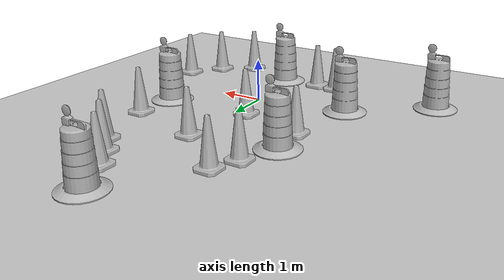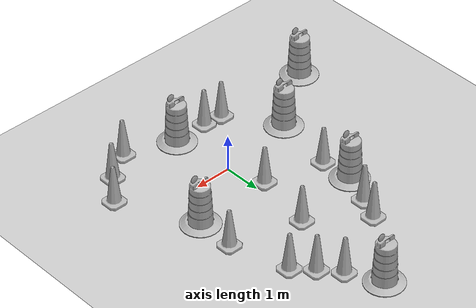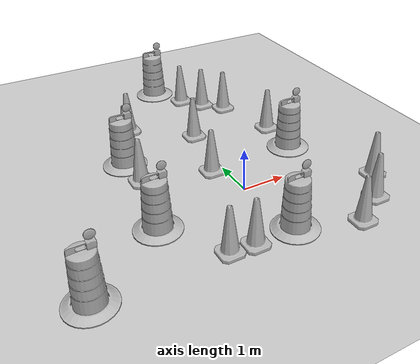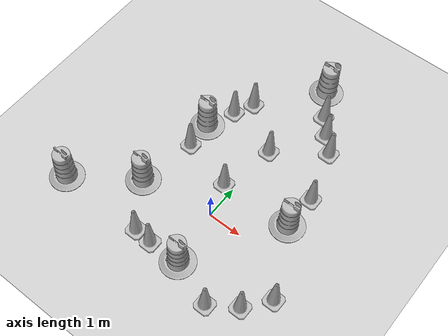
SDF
<sdf version="1.7">
 <world name="default">
  <light name="sun" type="directional">
   <pose>0 0 10 0 -0 0</pose>
   <diffuse>0.8 0.8 0.8 1</diffuse>
   <specular>0.2 0.2 0.2 1</specular>
   <attenuation>
    <range>1000</range>
    <constant>0.9</constant>
    <linear>0.01</linear>
    <quadratic>0.001</quadratic>
   </attenuation>
   <direction>-0.5 0.1 -0.9</direction>
   <spot><inner_angle>0</inner_angle><outer_angle>0</outer_angle><falloff>0</falloff></spot>
  </light>
  <model name="ground_plane">
   <static>1</static>
   <link name="link">
    <collision name="collision">
     <geometry><plane><normal>0 0 1</normal><size>100 100</size></plane></geometry>
     <surface><friction><ode><mu>100</mu><mu2>50</mu2></ode></friction></surface>
    </collision>
    <visual name="visual">
     <cast_shadows>0</cast_shadows>
     <geometry><plane><normal>0 0 1</normal><size>100 100</size></plane></geometry>
     <material>
      <script><uri>file://media/materials/scripts/gazebo.material</uri><name>Gazebo/Grey</name></script>
     </material>
    </visual>
   </link>
  </model>
  <gravity>0 0 -9.8</gravity>
  <magnetic_field>6e-06 2.3e-05 -4.2e-05</magnetic_field>
  <atmosphere type="adiabatic"/>
  <physics type="ode">
   <max_step_size>0.001</max_step_size>
   <real_time_factor>1</real_time_factor>
   <real_time_update_rate>1000</real_time_update_rate>
  </physics>
  <scene><ambient>0.4 0.4 0.4 1</ambient><background>0.7 0.7 0.7 1</background><shadows>1</shadows></scene>
  <audio><device>default</device></audio>
  <spherical_coordinates>
   <surface_model>EARTH_WGS84</surface_model>
   <latitude_deg>0</latitude_deg>
   <longitude_deg>0</longitude_deg>
   <elevation>0</elevation>
   <heading_deg>0</heading_deg>
  </spherical_coordinates>
  <model name="Construction Cone">
   <link name="link">
    <collision name="collision">
     <geometry>
      <mesh><scale>10 10 10</scale><uri>model://construction_cone/meshes/construction_cone.dae</uri></mesh>
     </geometry>
    </collision>
    <visual name="visual">
     <geometry>
      <mesh><scale>10 10 10</scale><uri>model://construction_cone/meshes/construction_cone.dae</uri></mesh>
     </geometry>
    </visual>
    <inertial>
     <inertia><ixx>1</ixx><ixy>0</ixy><ixz>0</ixz><iyy>1</iyy><iyz>0</iyz><izz>1</izz></inertia>
     <mass>1</mass>
    </inertial>
   </link>
   <pose>1.51242 -2.12778 -1e-05 0 -0 0</pose>
  </model>
  <model name="Construction Barrel">
   <link name="link">
    <inertial>
     <pose>0 0 0.4 0 -0 0</pose>
     <mass>500</mass>
     <inertia><ixx>51.2096</ixx><iyy>51.2096</iyy><izz>25</izz><ixy>0</ixy><ixz>0</ixz><iyz>0</iyz></inertia>
    </inertial>
    <collision name="collision">
     <geometry><mesh><uri>model://construction_barrel/meshes/construction_barrel.dae</uri></mesh></geometry>
    </collision>
    <visual name="visual">
     <geometry><mesh><uri>model://construction_barrel/meshes/construction_barrel.dae</uri></mesh></geometry>
    </visual>
   </link>
   <pose>0.205308 -1.63476 -1e-06 0 5e-06 -3.3e-05</pose>
  </model>
  <model name="Construction Cone_0">
   <link name="link">
    <collision name="collision">
     <geometry>
      <mesh><scale>10 10 10</scale><uri>model://construction_cone/meshes/construction_cone.dae</uri></mesh>
     </geometry>
    </collision>
    <visual name="visual">
     <geometry>
      <mesh><scale>10 10 10</scale><uri>model://construction_cone/meshes/construction_cone.dae</uri></mesh>
     </geometry>
    </visual>
    <inertial>
     <inertia><ixx>1</ixx><ixy>0</ixy><ixz>0</ixz><iyy>1</iyy><iyz>0</iyz><izz>1</izz></inertia>
     <mass>1</mass>
    </inertial>
   </link>
   <pose>2.27293 -1.62934 -0 1e-06 -0 0</pose>
  </model>
  <model name="Construction Cone_1">
   <link name="link">
    <collision name="collision">
     <geometry>
      <mesh><scale>10 10 10</scale><uri>model://construction_cone/meshes/construction_cone.dae</uri></mesh>
     </geometry>
    </collision>
    <visual name="visual">
     <geometry>
      <mesh><scale>10 10 10</scale><uri>model://construction_cone/meshes/construction_cone.dae</uri></mesh>
     </geometry>
    </visual>
    <inertial>
     <inertia><ixx>1</ixx><ixy>0</ixy><ixz>0</ixz><iyy>1</iyy><iyz>0</iyz><izz>1</izz></inertia>
     <mass>1</mass>
    </inertial>
   </link>
   <pose>2.81806 -0.928471 -0 0 -1e-06 0</pose>
  </model>
  <model name="Construction Barrel_0">
   <link name="link">
    <inertial>
     <pose>0 0 0.4 0 -0 0</pose>
     <mass>500</mass>
     <inertia><ixx>51.2096</ixx><iyy>51.2096</iyy><izz>25</izz><ixy>0</ixy><ixz>0</ixz><iyz>0</iyz></inertia>
    </inertial>
    <collision name="collision">
     <geometry><mesh><uri>model://construction_barrel/meshes/construction_barrel.dae</uri></mesh></geometry>
    </collision>
    <visual name="visual">
     <geometry><mesh><uri>model://construction_barrel/meshes/construction_barrel.dae</uri></mesh></geometry>
    </visual>
   </link>
   <pose>1.83898 1.04061 -1e-06 0 5e-06 -2.6e-05</pose>
  </model>
  <model name="Construction Barrel_1">
   <link name="link">
    <inertial>
     <pose>0 0 0.4 0 -0 0</pose>
     <mass>500</mass>
     <inertia><ixx>51.2096</ixx><iyy>51.2096</iyy><izz>25</izz><ixy>0</ixy><ixz>0</ixz><iyz>0</iyz></inertia>
    </inertial>
    <collision name="collision">
     <geometry><mesh><uri>model://construction_barrel/meshes/construction_barrel.dae</uri></mesh></geometry>
    </collision>
    <visual name="visual">
     <geometry><mesh><uri>model://construction_barrel/meshes/construction_barrel.dae</uri></mesh></geometry>
    </visual>
   </link>
   <pose>-1.89899 2.24211 -1e-06 0 5e-06 -2.5e-05</pose>
  </model>
  <model name="Construction Barrel_2">
   <link name="link">
    <inertial>
     <pose>0 0 0.4 0 -0 0</pose>
     <mass>500</mass>
     <inertia><ixx>51.2096</ixx><iyy>51.2096</iyy><izz>25</izz><ixy>0</ixy><ixz>0</ixz><iyz>0</iyz></inertia>
    </inertial>
    <collision name="collision">
     <geometry><mesh><uri>model://construction_barrel/meshes/construction_barrel.dae</uri></mesh></geometry>
    </collision>
    <visual name="visual">
     <geometry><mesh><uri>model://construction_barrel/meshes/construction_barrel.dae</uri></mesh></geometry>
    </visual>
   </link>
   <pose>-3.90149 -1.57375 -1e-06 0 5e-06 -2.4e-05</pose>
  </model>
  <model name="Construction Barrel_3">
   <link name="link">
    <inertial>
     <pose>0 0 0.4 0 -0 0</pose>
     <mass>500</mass>
     <inertia><ixx>51.2096</ixx><iyy>51.2096</iyy><izz>25</izz><ixy>0</ixy><ixz>0</ixz><iyz>0</iyz></inertia>
    </inertial>
    <collision name="collision">
     <geometry><mesh><uri>model://construction_barrel/meshes/construction_barrel.dae</uri></mesh></geometry>
    </collision>
    <visual name="visual">
     <geometry><mesh><uri>model://construction_barrel/meshes/construction_barrel.dae</uri></mesh></geometry>
    </visual>
   </link>
   <pose>0.148005 5.40159 -1e-06 -0 5e-06 -2.2e-05</pose>
  </model>
  <model name="Construction Cone_2">
   <link name="link">
    <collision name="collision">
     <geometry>
      <mesh><scale>10 10 10</scale><uri>model://construction_cone/meshes/construction_cone.dae</uri></mesh>
     </geometry>
    </collision>
    <visual name="visual">
     <geometry>
      <mesh><scale>10 10 10</scale><uri>model://construction_cone/meshes/construction_cone.dae</uri></mesh>
     </geometry>
    </visual>
    <inertial>
     <inertia><ixx>1</ixx><ixy>0</ixy><ixz>0</ixz><iyy>1</iyy><iyz>0</iyz><izz>1</izz></inertia>
     <mass>1</mass>
    </inertial>
   </link>
   <pose>1.88357 2.08639 -0 0 -0 0</pose>
  </model>
  <model name="Construction Cone_3">
   <link name="link">
    <collision name="collision">
     <geometry>
      <mesh><scale>10 10 10</scale><uri>model://construction_cone/meshes/construction_cone.dae</uri></mesh>
     </geometry>
    </collision>
    <visual name="visual">
     <geometry>
      <mesh><scale>10 10 10</scale><uri>model://construction_cone/meshes/construction_cone.dae</uri></mesh>
     </geometry>
    </visual>
    <inertial>
     <inertia><ixx>1</ixx><ixy>0</ixy><ixz>0</ixz><iyy>1</iyy><iyz>0</iyz><izz>1</izz></inertia>
     <mass>1</mass>
    </inertial>
   </link>
   <pose>-0.285798 0.973893 -0 0 -0 0</pose>
  </model>
  <model name="Construction Cone_4">
   <link name="link">
    <collision name="collision">
     <geometry>
      <mesh><scale>10 10 10</scale><uri>model://construction_cone/meshes/construction_cone.dae</uri></mesh>
     </geometry>
    </collision>
    <visual name="visual">
     <geometry>
      <mesh><scale>10 10 10</scale><uri>model://construction_cone/meshes/construction_cone.dae</uri></mesh>
     </geometry>
    </visual>
    <inertial>
     <inertia><ixx>1</ixx><ixy>0</ixy><ixz>0</ixz><iyy>1</iyy><iyz>0</iyz><izz>1</izz></inertia>
     <mass>1</mass>
    </inertial>
   </link>
   <pose>0.615323 4.57837 -0 -0 -0 -0</pose>
  </model>
  <model name="Construction Cone_5">
   <link name="link">
    <collision name="collision">
     <geometry>
      <mesh><scale>10 10 10</scale><uri>model://construction_cone/meshes/construction_cone.dae</uri></mesh>
     </geometry>
    </collision>
    <visual name="visual">
     <geometry>
      <mesh><scale>10 10 10</scale><uri>model://construction_cone/meshes/construction_cone.dae</uri></mesh>
     </geometry>
    </visual>
    <inertial>
     <inertia><ixx>1</ixx><ixy>0</ixy><ixz>0</ixz><iyy>1</iyy><iyz>0</iyz><izz>1</izz></inertia>
     <mass>1</mass>
    </inertial>
   </link>
   <pose>1.01582 4.07775 -0 0 -1e-06 0</pose>
  </model>
  <model name="Construction Cone_6">
   <link name="link">
    <collision name="collision">
     <geometry>
      <mesh><scale>10 10 10</scale><uri>model://construction_cone/meshes/construction_cone.dae</uri></mesh>
     </geometry>
    </collision>
    <visual name="visual">
     <geometry>
      <mesh><scale>10 10 10</scale><uri>model://construction_cone/meshes/construction_cone.dae</uri></mesh>
     </geometry>
    </visual>
    <inertial>
     <inertia><ixx>1</ixx><ixy>0</ixy><ixz>0</ixz><iyy>1</iyy><iyz>0</iyz><izz>1</izz></inertia>
     <mass>1</mass>
    </inertial>
   </link>
   <pose>1.43857 3.62163 -1e-05 -1e-06 0 0</pose>
  </model>
  <model name="Construction Cone_7">
   <link name="link">
    <collision name="collision">
     <geometry>
      <mesh><scale>10 10 10</scale><uri>model://construction_cone/meshes/construction_cone.dae</uri></mesh>
     </geometry>
    </collision>
    <visual name="visual">
     <geometry>
      <mesh><scale>10 10 10</scale><uri>model://construction_cone/meshes/construction_cone.dae</uri></mesh>
     </geometry>
    </visual>
    <inertial>
     <inertia><ixx>1</ixx><ixy>0</ixy><ixz>0</ixz><iyy>1</iyy><iyz>0</iyz><izz>1</izz></inertia>
     <mass>1</mass>
    </inertial>
   </link>
   <pose>-1.54292 3.06538 -0 0 -1e-06 0</pose>
  </model>
  <model name="Construction Cone_8">
   <link name="link">
    <collision name="collision">
     <geometry>
      <mesh><scale>10 10 10</scale><uri>model://construction_cone/meshes/construction_cone.dae</uri></mesh>
     </geometry>
    </collision>
    <visual name="visual">
     <geometry>
      <mesh><scale>10 10 10</scale><uri>model://construction_cone/meshes/construction_cone.dae</uri></mesh>
     </geometry>
    </visual>
    <inertial>
     <inertia><ixx>1</ixx><ixy>0</ixy><ixz>0</ixz><iyy>1</iyy><iyz>0</iyz><izz>1</izz></inertia>
     <mass>1</mass>
    </inertial>
   </link>
   <pose>-1.83217 1.39664 -0 0 -1e-06 0</pose>
  </model>
  <model name="Construction Cone_9">
   <link name="link">
    <collision name="collision">
     <geometry>
      <mesh><scale>10 10 10</scale><uri>model://construction_cone/meshes/construction_cone.dae</uri></mesh>
     </geometry>
    </collision>
    <visual name="visual">
     <geometry>
      <mesh><scale>10 10 10</scale><uri>model://construction_cone/meshes/construction_cone.dae</uri></mesh>
     </geometry>
    </visual>
    <inertial>
     <inertia><ixx>1</ixx><ixy>0</ixy><ixz>0</ixz><iyy>1</iyy><iyz>0</iyz><izz>1</izz></inertia>
     <mass>1</mass>
    </inertial>
   </link>
   <pose>-1.2648 3.65602 -0 0 -0 0</pose>
  </model>
  <model name="Construction Cone_10">
   <link name="link">
    <collision name="collision">
     <geometry>
      <mesh><scale>10 10 10</scale><uri>model://construction_cone/meshes/construction_cone.dae</uri></mesh>
     </geometry>
    </collision>
    <visual name="visual">
     <geometry>
      <mesh><scale>10 10 10</scale><uri>model://construction_cone/meshes/construction_cone.dae</uri></mesh>
     </geometry>
    </visual>
    <inertial>
     <inertia><ixx>1</ixx><ixy>0</ixy><ixz>0</ixz><iyy>1</iyy><iyz>0</iyz><izz>1</izz></inertia>
     <mass>1</mass>
    </inertial>
   </link>
   <pose>0.059071 2.61027 -0 0 -1e-06 0</pose>
  </model>
  <model name="Construction Cone_11">
   <link name="link">
    <collision name="collision">
     <geometry>
      <mesh><scale>10 10 10</scale><uri>model://construction_cone/meshes/construction_cone.dae</uri></mesh>
     </geometry>
    </collision>
    <visual name="visual">
     <geometry>
      <mesh><scale>10 10 10</scale><uri>model://construction_cone/meshes/construction_cone.dae</uri></mesh>
     </geometry>
    </visual>
    <inertial>
     <inertia><ixx>1</ixx><ixy>0</ixy><ixz>0</ixz><iyy>1</iyy><iyz>0</iyz><izz>1</izz></inertia>
     <mass>1</mass>
    </inertial>
   </link>
   <pose>-0.730809 -1.67282 -1e-05 0 -0 0</pose>
  </model>
  <model name="Construction Cone_12">
   <link name="link">
    <collision name="collision">
     <geometry>
      <mesh><scale>10 10 10</scale><uri>model://construction_cone/meshes/construction_cone.dae</uri></mesh>
     </geometry>
    </collision>
    <visual name="visual">
     <geometry>
      <mesh><scale>10 10 10</scale><uri>model://construction_cone/meshes/construction_cone.dae</uri></mesh>
     </geometry>
    </visual>
    <inertial>
     <inertia><ixx>1</ixx><ixy>0</ixy><ixz>0</ixz><iyy>1</iyy><iyz>0</iyz><izz>1</izz></inertia>
     <mass>1</mass>
    </inertial>
   </link>
   <pose>-1.2648 -1.62833 -1e-05 0 -0 0</pose>
  </model>
  <model name="Construction Barrel_4">
   <link name="link">
    <inertial>
     <pose>0 0 0.4 0 -0 0</pose>
     <mass>500</mass>
     <inertia><ixx>51.2096</ixx><iyy>51.2096</iyy><izz>25</izz><ixy>0</ixy><ixz>0</ixz><iyz>0</iyz></inertia>
    </inertial>
    <collision name="collision">
     <geometry><mesh><uri>model://construction_barrel/meshes/construction_barrel.dae</uri></mesh></geometry>
    </collision>
    <visual name="visual">
     <geometry><mesh><uri>model://construction_barrel/meshes/construction_barrel.dae</uri></mesh></geometry>
    </visual>
   </link>
   <pose>-2.1548 -0.315588 -2e-06 1e-06 8e-06 -4e-06</pose>
  </model>
 </world>
</sdf>
